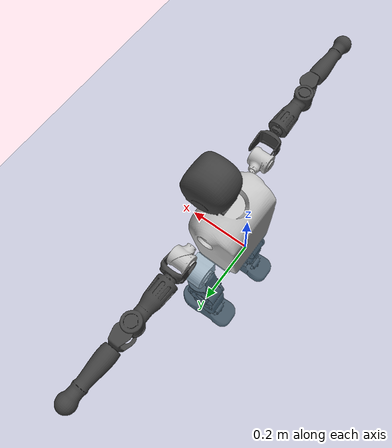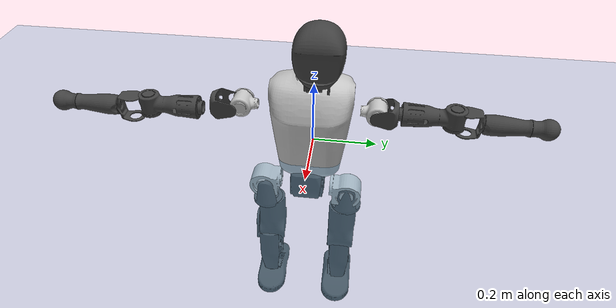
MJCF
<mujoco model="T1">
  <compiler angle="radian" assetdir="assets" balanceinertia="true" inertiafromgeom="false"/>

  <option timestep="0.005" density="1.2" viscosity="2e-05"/>

  <size nkey="1"/>

  <visual>
    <quality shadowsize="8192"/>
    <map shadowclip="0.5"/>
  </visual>

  <default>
    <default class="/">
      <joint armature="0.01" damping="0.01" frictionloss="0.1"/>
      <geom contype="0" conaffinity="0" group="1" solref="-1000 -80"/>
      <site size="0.01 0.005 0.005" group="5"/>
      <general forcelimited="true" biastype="affine" gainprm="25" biasprm="0 -25 -0.6"/>
      <default class="t1">
        <geom rgba="0.25 0.25 0.25 1"/>
        <default class="visual">
          <geom type="mesh" group="2"/>
        </default>
        <default class="collision">
          <geom group="3"/>
        </default>
        <default class="foot">
          <geom size="0.1115 0.05 0.015" type="box" condim="6" group="4" priority="1" solimp="0.015 1 0.015"/>
        </default>
        <default class="reward_collision_sphere">
          <geom group="5" rgba="1 0 0 1"/>
        </default>
      </default>
    </default>
  </default>

  <asset>
    <texture type="skybox" colorspace="auto" name="//unnamed_texture_0" builtin="gradient" rgb1="0.95 0.95 0.95" rgb2="0.95 0.95 0.95" width="100" height="600"/>
    <texture type="2d" colorspace="auto" name="texplane" builtin="checker" rgb1="0.345 0.575 0.748" rgb2="0.345 0.575 0.748" markrgb="1 1 1" width="512" height="512"/>
    <material name="MatPlane" class="/" texture="texplane" texuniform="true" texrepeat="2 2" specular="0.9"/>
    <mesh name="Trunk" class="/" file="Trunk.stl"/>
    <mesh name="H1" class="/" file="H1.stl"/>
    <mesh name="H2" class="/" file="H2.stl"/>
    <mesh name="AL1" class="/" file="AL1.stl"/>
    <mesh name="AL2" class="/" file="AL2.stl"/>
    <mesh name="AL3" class="/" file="AL3.stl"/>
    <mesh name="left_hand_link" class="/" file="left_hand_link.stl"/>
    <mesh name="AR1" class="/" file="AR1.stl"/>
    <mesh name="AR2" class="/" file="AR2.stl"/>
    <mesh name="AR3" class="/" file="AR3.stl"/>
    <mesh name="right_hand_link" class="/" file="right_hand_link.stl"/>
    <mesh name="Waist" class="/" file="Waist.stl"/>
    <mesh name="Hip_Pitch_Left" class="/" file="Hip_Pitch_Left.stl"/>
    <mesh name="Hip_Roll_Left" class="/" file="Hip_Roll_Left.stl"/>
    <mesh name="Hip_Yaw_Left" class="/" file="Hip_Yaw_Left.stl"/>
    <mesh name="Shank_Left" class="/" file="Shank_Left.stl"/>
    <mesh name="Ankle_Cross_Left" class="/" file="Ankle_Cross_Left.stl"/>
    <mesh name="left_foot_link" class="/" file="left_foot_link.stl"/>
    <mesh name="Hip_Pitch_Right" class="/" file="Hip_Pitch_Right.stl"/>
    <mesh name="Hip_Roll_Right" class="/" file="Hip_Roll_Right.stl"/>
    <mesh name="Hip_Yaw_Right" class="/" file="Hip_Yaw_Right.stl"/>
    <mesh name="Shank_Right" class="/" file="Shank_Right.stl"/>
    <mesh name="Ankle_Cross_Right" class="/" file="Ankle_Cross_Right.stl"/>
    <mesh name="right_foot_link" class="/" file="right_foot_link.stl"/>
  </asset>

  <worldbody>
    <geom name="floor" class="/" size="100 100 0.125" type="plane" group="0" material="MatPlane"/>
    <light name="toplight_shadow" class="/" pos="0 0 5" dir="0.0990148 0.0990148 -0.990148" type="directional" ambient="0.04 0.04 0.04" diffuse="0.55 0.55 0.55" specular="0.12 0.12 0.12"/>
    <light name="toplight_fill" class="/" pos="0 0 5" dir="0.0990148 0.0990148 -0.990148" type="directional" castshadow="false" ambient="0.04 0.04 0.04" diffuse="0.3 0.3 0.3" specular="0.08 0.08 0.08"/>
    <body name="trunk" childclass="t1" pos="0.00115666 0.000506667 -0.0118436" quat="0.999999 0.00107325 -0.00015386 0.000479854">
      <inertial pos="0.072882 -0.000162301 0.0964376" quat="0.99898 -0.00435436 -0.02974 0.0337123" mass="20.5377" diaginertia="0.399852 0.298487 0.0298541"/>
      <joint name="//unnamed_joint_0" type="free" armature="0" damping="0" frictionloss="0"/>
      <geom name="//unnamed_geom_1" class="visual" rgba="0.76 0.76 0.76 1" mesh="Trunk"/>
      <geom name="//unnamed_geom_2" class="collision" size="0.0881358 0.117514 0.176272" pos="0.0796741 0 0.103816" type="box"/>
      <geom name="//unnamed_geom_3" class="reward_collision_sphere" size="0.135142" pos="0.0796741 0 0.0865134"/>
      <geom name="//unnamed_geom_4" class="reward_collision_sphere" size="0.0176272" pos="0.0796741 0.113254 0"/>
      <geom name="//unnamed_geom_5" class="reward_collision_sphere" size="0.0176272" pos="0.0796741 -0.113254 0"/>
      <geom name="//unnamed_geom_6" class="reward_collision_sphere" size="0.0176272" pos="0.0796741 0.142566 0.155724"/>
      <geom name="//unnamed_geom_7" class="reward_collision_sphere" size="0.0176272" pos="0.0796741 -0.142566 0.155724"/>
      <site name="imu" pos="-0.0769626 0.0663999 -0.0348628" size="0.0117514"/>
      <camera name="track" pos="0 -2.66479 0" quat="0.707107 0.707107 0 0" mode="trackcom"/>
      <camera name="ego_camera" pos="0.162004 0 0.363356" quat="-0.5 -0.5 0.5 0.5"/>
      <body name="H1" pos="0.0894146 0.00893481 0.208345" quat="0.99999 0.000476637 -0.00407191 0.00148379">
        <inertial pos="-0.00144899 0.00180686 0.0536407" quat="0.757899 -0.00228733 0.0244589 0.651909" mass="0.676804" diaginertia="0.000822235 0.000906664 5.92999e-05"/>
        <joint name="AAHead_yaw" pos="0 0 0" axis="0.00343249 0.00217549 0.999992" range="-1.70861 1.38132" armature="0.00870481" damping="0.00800381" frictionloss="0.147007"/>
        <geom name="//unnamed_geom_8" class="visual" mesh="H1"/>
        <body name="H2" pos="-0.000782239 0.0139146 0.0521992" quat="1 6.82765e-05 -0.000103104 -5.9668e-05">
          <inertial pos="-0.00543122 -0.0127759 0.0752667" quat="0.984725 0.135115 -0.0804314 -0.0747717" mass="0.820108" diaginertia="0.00765035 0.00857 0.000858437"/>
          <joint name="Head_pitch" pos="0 0 0" axis="0.0238188 -0.999714 0.00205288" range="-1.24526 0.148446" armature="0.0197472" damping="0.0525362" frictionloss="0.123772"/>
          <geom name="//unnamed_geom_9" class="visual" mesh="H2"/>
          <geom name="//unnamed_geom_10" class="collision" size="0.0940115" pos="0.013279 0 0.0951647"/>
          <geom name="//unnamed_geom_11" class="reward_collision_sphere" size="0.105763" pos="0.026558 0 0.0865134"/>
        </body>
      </body>
      <body name="AL1" pos="0.0876356 0.142275 0.188349" quat="0.999992 -0.00219138 0.00312647 0.00133207">
        <inertial pos="-0.00838497 0.0520208 -0.0140586" quat="0.514874 0.520203 -0.498509 0.464523" mass="0.908031" diaginertia="0.00589365 0.00550109 0.000129326"/>
        <joint name="Left_Shoulder_Pitch" pos="0 0 0" axis="0.00629747 0.99963 0.0264596" stiffness="0.0638497" range="-3.03794 1.42146" armature="0.00952566" damping="0.0180537" frictionloss="0.111963"/>
        <geom name="//unnamed_geom_12" class="visual" rgba="0.76 0.76 0.76 1" mesh="AL1"/>
        <body name="AL2" pos="-0.001541 0.0490095 -0.00495057" quat="0.99997 0.00489461 -0.00347661 -0.00487919">
          <inertial pos="-0.00221102 0.0508148 0.0114678" quat="0.482545 0.516004 -0.478239 0.521706" mass="0.170924" diaginertia="0.00139129 0.00101779 7.36954e-05"/>
          <joint name="Left_Shoulder_Roll" pos="0 0 0" axis="-0.996841 -0.0714955 -0.0345834" stiffness="0.0420954" range="-1.38176 1.74518" armature="0.00695683" damping="0.0800275" frictionloss="0.154635"/>
          <geom name="//unnamed_geom_13" class="visual" mesh="AL2"/>
          <body name="AL3" pos="-0.00649129 0.0670897 -0.00163994" quat="0.999968 -0.00409253 -0.00150752 -0.00670244">
            <inertial pos="-0.00209256 0.112271 0.000182815" quat="0.71814 0.693421 0.0049783 -0.0584559" mass="1.37586" diaginertia="0.044627 0.0436983 0.000272734"/>
            <joint name="Left_Elbow_Pitch" pos="0 0 0" axis="-1.45282e-05 -1 3.42142e-05" range="-2.11995 2.25922" armature="0.0114077" damping="0.00239729" frictionloss="0.116898"/>
            <geom name="//unnamed_geom_14" class="visual" mesh="AL3"/>
            <geom name="//unnamed_geom_15" class="collision" size="0.0352543 0.0881358" pos="0 0.0666198 0" quat="0.707105 0.707108 0 0" type="cylinder"/>
            <geom name="//unnamed_geom_16" class="reward_collision_sphere" size="0.0423052"/>
            <body name="left_hand_link" pos="0.00167626 0.180987 -0.0097852" quat="0.999975 0.00412936 -0.0019144 -0.00546632">
              <inertial pos="0.00315868 0.153438 0.0141675" quat="0.751687 0.659234 0.00561234 -0.0185862" mass="0.644438" diaginertia="0.0362401 0.0406842 0.000137409"/>
              <joint name="Left_Elbow_Yaw" pos="0 0 0" axis="0.0271333 0.057173 0.997996" range="-2.40554 -0.235568" armature="0.0110583" damping="0.0555149" frictionloss="0.0271323"/>
              <geom name="//unnamed_geom_17" class="visual" mesh="left_hand_link"/>
              <geom name="//unnamed_geom_18" class="collision" size="0.0352543 0.102825" pos="0 0.173212 0" quat="0.707105 0.707108 0 0" type="cylinder"/>
              <geom name="//unnamed_geom_19" class="reward_collision_sphere" size="0.0587572"/>
              <geom name="//unnamed_geom_20" class="reward_collision_sphere" size="0.04113" pos="0 0.146564 0"/>
              <geom name="//unnamed_geom_21" class="reward_collision_sphere" size="0.04113" pos="0 0.286465 0"/>
            </body>
          </body>
        </body>
      </body>
      <body name="AR1" pos="0.0891149 -0.152307 0.188313" quat="0.999999 0.000818743 -0.000931152 -9.52954e-05">
        <inertial pos="-0.00198973 -0.0556044 -0.0024116" quat="0.500201 0.501916 -0.503044 0.494799" mass="0.796324" diaginertia="0.00573142 0.00589854 0.000146933"/>
        <joint name="Right_Shoulder_Pitch" pos="0 0 0" axis="-0.0155099 -0.999128 -0.0387579" range="-1.51039 3.36771" armature="0.0121553" damping="0" frictionloss="0.111865"/>
        <geom name="//unnamed_geom_22" class="visual" rgba="0.76 0.76 0.76 1" mesh="AR1"/>
        <body name="AR2" pos="0.0140441 -0.0741046 0.000260395" quat="0.999992 -0.00365175 -0.00124844 -0.00131293">
          <inertial pos="0.0141101 -0.0574096 0.0108662" quat="0.525214 0.448365 -0.5214 0.501259" mass="0.22891" diaginertia="0.00177707 0.00159032 8.33741e-05"/>
          <joint name="Right_Shoulder_Roll" pos="0 0 0" axis="-0.99986 0.0106229 0.0129397" range="-1.90592 1.85548" armature="0.0116534" damping="0" frictionloss="0.198479"/>
          <geom name="//unnamed_geom_23" class="visual" mesh="AR2"/>
          <body name="AR3" pos="0.00839721 -0.09586 -0.013306" quat="0.999999 0.000539589 -0.000856591 -0.0006111">
            <inertial pos="0.000949683 -0.108658 -0.000310187" quat="0.738623 0.670993 0.000321786 0.0648403" mass="1.84687" diaginertia="0.0593541 0.0476076 0.000321648"/>
            <joint name="Right_Elbow_Pitch" pos="0 0 0" axis="-0.00233264 0.99999 -0.00383802" range="-2.28876 2.25716" armature="0.013804" damping="0" frictionloss="0.0323185"/>
            <geom name="//unnamed_geom_24" class="visual" mesh="AR3"/>
            <geom name="//unnamed_geom_25" class="collision" size="0.0352543 0.0881358" pos="0 -0.0666198 0" quat="0.707105 0.707108 0 0" type="cylinder"/>
            <geom name="//unnamed_geom_26" class="reward_collision_sphere" size="0.0423052"/>
            <body name="right_hand_link" pos="0.0132107 -0.192521 -0.00560466" quat="0.999991 -0.00167662 0.0031309 -0.00225834">
              <inertial pos="-0.00355922 -0.146098 -0.013485" quat="0.703055 0.707907 -0.0668329 -0.0107403" mass="0.603627" diaginertia="0.0449612 0.0404583 0.000122043"/>
              <joint name="Right_Elbow_Yaw" pos="0 0 0" axis="-0.00204746 -0.0109908 0.999938" range="0.235932 2.35699" armature="0.0020823" damping="0.0193352" frictionloss="0.123365"/>
              <geom name="//unnamed_geom_27" class="visual" mesh="right_hand_link"/>
              <geom name="//unnamed_geom_28" class="collision" size="0.0352543 0.102825" pos="0 -0.173212 0" quat="0.707105 0.707108 0 0" type="cylinder"/>
              <geom name="//unnamed_geom_29" class="reward_collision_sphere" size="0.0587572"/>
              <geom name="//unnamed_geom_30" class="reward_collision_sphere" size="0.04113" pos="0 -0.146564 0"/>
              <geom name="//unnamed_geom_31" class="reward_collision_sphere" size="0.04113" pos="0 -0.286465 0"/>
            </body>
          </body>
        </body>
      </body>
      <body name="Waist" pos="0.0810574 -0.00607378 -0.0882082" quat="1 -0.000429982 0.00013679 0.000382255">
        <inertial pos="-0.0112592 -0.00151642 0.00770081" quat="0.98955 -0.00127902 -0.1439 0.00900377" mass="4.20764" diaginertia="0.0255299 0.0301582 0.00252973"/>
        <joint name="Waist" pos="0 0 0" axis="0.0278951 -0.00116063 0.99961" stiffness="0.00212612" range="-1.88168 1.42516" armature="0.0186594" damping="0.0037292" frictionloss="0.130821"/>
        <geom name="//unnamed_geom_32" class="visual" mesh="Waist"/>
        <body name="Hip_Pitch_Left" pos="0.0139961 0.128058 -0.00293201" quat="0.999973 -0.00613344 0.00237775 -0.00318331">
          <inertial pos="0.0100728 -0.0249329 -0.0168766" quat="0.975571 0.21919 0.0145779 0.00212845" mass="1.9527" diaginertia="0.00835381 0.00550422 0.000685815"/>
          <joint name="Left_Hip_Pitch" pos="0 0 0" axis="-0.0177433 0.99981 0.0080227" range="-1.77819 1.37102" armature="0.0123215" damping="0" frictionloss="0.115174"/>
          <geom name="//unnamed_geom_33" class="visual" rgba="0.76 0.76 0.76 1" mesh="Hip_Pitch_Left"/>
          <body name="Hip_Roll_Left" pos="-0.00871668 -8.88406e-05 -0.011637" quat="0.999978 0.000870016 -0.00196338 0.00624466">
            <inertial pos="0.00145816 0.000206636 -0.041278" quat="0.707095 -0.00644837 -0.0047838 0.707073" mass="0.629414" diaginertia="0.00727649 0.00739547 0.000288144"/>
            <joint name="Left_Hip_Roll" pos="0 0 0" axis="-1 -0.000108303 0.000119388" stiffness="0.0466188" range="-1.66632 0.310931" armature="0.0124893" damping="0.00527788" frictionloss="0.047706"/>
            <geom name="//unnamed_geom_34" class="visual" mesh="Hip_Roll_Left"/>
            <geom name="//unnamed_geom_35" class="reward_collision_sphere" size="0.0646329"/>
            <body name="Hip_Yaw_Left" pos="0.00453894 -0.0084456 -0.0738995" quat="0.999988 -0.000645985 -0.00480698 0.000236314">
              <inertial pos="-0.011102 -0.000579745 -0.0779255" quat="0.706794 -0.094365 0.0114365 0.701004" mass="3.83665" diaginertia="0.101517 0.125964 0.00111391"/>
              <joint name="Left_Hip_Yaw" pos="0 0 0" axis="0.0229201 0.0622964 -0.997794" range="-1.02368 0.951754" armature="0.01224" damping="0.0301067" frictionloss="0.118054"/>
              <geom name="//unnamed_geom_36" class="visual" mesh="Hip_Yaw_Left"/>
              <geom name="//unnamed_geom_37" class="collision" size="0.0587572 0.0940115" type="cylinder"/>
              <body name="Shank_Left" pos="-0.0188085 -0.000721036 -0.112615" quat="0.99999 0.00270436 -0.00179647 0.00293347">
                <inertial pos="-0.00719247 -0.00575795 -0.108992" quat="0.99556 -0.0558411 -0.0181379 0.0735671" mass="2.6763" diaginertia="0.165535 0.132377 0.000935721"/>
                <joint name="Left_Knee_Pitch" pos="0 0 0" axis="0.000814319 0.999998 0.00179852" stiffness="4.5839e-05" range="-0.133871 2.32372" armature="0.00823769" damping="0.0144924" frictionloss="0.0421456"/>
                <geom name="//unnamed_geom_38" class="visual" mesh="Shank_Left"/>
                <geom name="//unnamed_geom_39" class="collision" size="0.0587572 0.0881358" pos="0 0 -0.103816" type="cylinder"/>
                <geom name="//unnamed_geom_40" class="reward_collision_sphere" size="0.0763844"/>
                <body name="Ankle_Cross_Left" pos="0.00755318 -0.00271614 -0.245725" quat="0.999989 0.00192508 -0.00325035 0.00293592">
                  <inertial pos="-0.0019749 -0.00838157 0.00872625" quat="0.415265 0.553901 0.560217 0.454868" mass="0.0943221" diaginertia="8.31511e-05 0.000101016 5.08642e-06"/>
                  <joint name="Left_Ankle_Pitch" pos="0 0 0" axis="-0.0327501 0.999045 -0.0289366" stiffness="0.0124427" range="-0.553419 0.164699" armature="0.0167406" damping="0" frictionloss="0.0399081"/>
                  <geom name="//unnamed_geom_41" class="visual" mesh="Ankle_Cross_Left"/>
                  <body name="left_foot_link" pos="-0.0133416 -0.00118737 0.00350527" quat="0.999995 0.000520303 -0.00308118 -0.000305479">
                    <inertial pos="0.00556365 0.0142312 -0.0121993" quat="0.00270744 0.620789 -0.00154655 0.783971" mass="1.20732" diaginertia="0.0095612 0.00981133 0.000971496"/>
                    <joint name="Left_Ankle_Roll" pos="0 0 0" axis="-0.999569 -0.016086 0.0245662" range="-0.244768 0.580555" armature="0.0125747" damping="0.0398888" frictionloss="0.10249"/>
                    <geom name="//unnamed_geom_42" class="visual" mesh="left_foot_link"/>
                    <geom name="left_foot" class="foot" size="0.103364 0.057361 0.0124637" pos="0.013279 0 -0.012977"/>
                    <geom name="//unnamed_geom_44" class="reward_collision_sphere" size="0.0611075" pos="0.013279 0 -0.012977"/>
                    <geom name="//unnamed_geom_45" class="reward_collision_sphere" size="0.0352543" pos="0.126151 -0.0306451 -0.012977"/>
                    <geom name="//unnamed_geom_46" class="reward_collision_sphere" size="0.0352543" pos="-0.0929531 -0.0306451 -0.012977"/>
                    <site name="left_foot" class="foot" pos="0.013279 0 -0.012977" size="0.0117514"/>
                  </body>
                </body>
              </body>
            </body>
          </body>
        </body>
        <body name="Hip_Pitch_Right" pos="-0.00138804 -0.140606 0.000930175" quat="0.99999 0.00390947 -0.00224592 -0.000335369">
          <inertial pos="0.00203159 0.00442987 -0.0297929" quat="0.978633 -0.196316 0.0424906 0.0439549" mass="1.5591" diaginertia="0.00693138 0.00566922 0.000482888"/>
          <joint name="Right_Hip_Pitch" pos="0 0 0" axis="-0.023638 -0.998192 0.0552609" stiffness="0.0406837" range="-1.56432 1.77046" armature="0.00502593" damping="0.0295048" frictionloss="0.0650294"/>
          <geom name="//unnamed_geom_47" class="visual" rgba="0.76 0.76 0.76 1" mesh="Hip_Pitch_Right"/>
          <body name="Hip_Roll_Right" pos="-0.000661191 0.00822672 -0.0229435" quat="0.999969 0.00206038 0.0073025 0.00214332">
            <inertial pos="-0.0138858 -0.00614096 -0.0360242" quat="0.737134 0.0290475 0.014264 0.674972" mass="0.717111" diaginertia="0.00929175 0.00681914 0.000288195"/>
            <joint name="Right_Hip_Roll" pos="0 0 0" axis="-0.999986 0.00511677 -0.00110295" stiffness="0.000876746" range="-0.213149 1.3318" armature="0.0108545" damping="0.00609292" frictionloss="0.120593"/>
            <geom name="//unnamed_geom_48" class="visual" mesh="Hip_Roll_Right"/>
            <geom name="//unnamed_geom_49" class="reward_collision_sphere" size="0.0646329"/>
            <body name="Hip_Yaw_Right" pos="-0.00338362 0.0115015 -0.0678769" quat="0.999977 0.0001833 -0.00684115 -0.000368743">
              <inertial pos="-0.0190221 0.00346306 -0.0832531" quat="0.691985 -0.072414 -0.0277168 0.717736" mass="2.68825" diaginertia="0.0733029 0.0708913 0.000938264"/>
              <joint name="Right_Hip_Yaw" pos="0 0 0" axis="-0.0239235 0.0202258 -0.999509" range="-1.02064 1.31151" armature="0.0108346" damping="0.0120173" frictionloss="0.198597"/>
              <geom name="//unnamed_geom_50" class="visual" mesh="Hip_Yaw_Right"/>
              <geom name="//unnamed_geom_51" class="collision" size="0.0587572 0.0940115" type="cylinder"/>
              <body name="Shank_Right" pos="-0.0041747 -0.0104636 -0.108554" quat="0.999977 -0.00425432 0.000816659 0.00522685">
                <inertial pos="-0.0210226 -0.00904134 -0.102897" quat="0.999308 0.000124234 -0.0219768 -0.0300219" mass="2.43921" diaginertia="0.146527 0.177819 0.00113511"/>
                <joint name="Right_Knee_Pitch" pos="0 0 0" axis="0.017465 -0.999799 -0.00981722" range="-2.23574 0.00570007" armature="0.0106168" damping="0" frictionloss="0.0738542"/>
                <geom name="//unnamed_geom_52" class="visual" mesh="Shank_Right"/>
                <geom name="//unnamed_geom_53" class="collision" size="0.0587572 0.0881358" pos="0 0 -0.103816" type="cylinder"/>
                <geom name="//unnamed_geom_54" class="reward_collision_sphere" size="0.0763844"/>
                <body name="Ankle_Cross_Right" pos="-0.000468088 0.00108802 -0.230959" quat="0.999978 -0.00334891 -0.00159018 -0.00551392">
                  <inertial pos="-0.00532405 -0.000469862 -0.00648499" quat="0.436513 0.544668 0.578928 0.421468" mass="0.156938" diaginertia="0.000136213 0.000123978 6.45505e-06"/>
                  <joint name="Right_Ankle_Pitch" pos="0 0 0" axis="0.045525 -0.996849 0.0649522" range="-0.338708 1.08629" armature="0.00472996" damping="0.058131" frictionloss="0.20898"/>
                  <geom name="//unnamed_geom_55" class="visual" mesh="Ankle_Cross_Right"/>
                  <body name="right_foot_link" pos="-0.0107941 0.00117648 -0.0164213" quat="0.999991 0.00386165 0.00141386 0.00144173">
                    <inertial pos="-0.00540427 -4.3232e-05 0.00501018" quat="-0.0130197 0.62762 -0.00154978 0.778409" mass="0.855465" diaginertia="0.0114916 0.00885026 0.0010621"/>
                    <joint name="Right_Ankle_Roll" pos="0 0 0" axis="-0.998224 0.0449631 -0.0390742" range="-0.755313 0.279342" armature="0.0189825" damping="0.00794333" frictionloss="0.105061"/>
                    <geom name="//unnamed_geom_56" class="visual" mesh="right_foot_link"/>
                    <geom name="right_foot" class="foot" size="0.204714 0.038396 0.016861" pos="0.013279 0 -0.012977"/>
                    <geom name="//unnamed_geom_58" class="reward_collision_sphere" size="0.0470058"/>
                    <geom name="//unnamed_geom_59" class="reward_collision_sphere" size="0.0352543" pos="0.013279 0 -0.012977"/>
                    <geom name="//unnamed_geom_60" class="reward_collision_sphere" size="0.0352543" pos="0.126151 0.0306451 -0.012977"/>
                    <geom name="//unnamed_geom_61" class="reward_collision_sphere" size="0.0352543" pos="-0.0929531 0.0306451 -0.012977"/>
                    <site name="right_foot" class="foot" pos="0.013279 0 -0.012977" size="0.0117514"/>
                  </body>
                </body>
              </body>
            </body>
          </body>
        </body>
      </body>
    </body>
  </worldbody>

  <contact>
    <pair class="/" geom1="floor" geom2="left_foot" name="//unnamed_contact_0"/>
    <pair class="/" geom1="floor" geom2="right_foot" name="//unnamed_contact_1"/>
  </contact>

  <actuator>
    <general name="AAHead_yaw" class="/" joint="AAHead_yaw" forcerange="-10.689 10.689" gainprm="20.8378" biasprm="0 -20.8378 -0.59249"/>
    <general name="Head_pitch" class="/" joint="Head_pitch" forcerange="-7.37084 7.37084" gainprm="20.8378" biasprm="0 -20.8378 -0.59249"/>
    <general name="Left_Shoulder_Pitch" class="/" joint="Left_Shoulder_Pitch" forcerange="-20.7758 20.7758" gainprm="20.8378" biasprm="0 -20.8378 -0.59249"/>
    <general name="Left_Shoulder_Roll" class="/" joint="Left_Shoulder_Roll" forcerange="-20.9416 20.9416" gainprm="20.8378" biasprm="0 -20.8378 -0.59249"/>
    <general name="Left_Elbow_Pitch" class="/" joint="Left_Elbow_Pitch" forcerange="-11.2536 11.2536" gainprm="20.8378" biasprm="0 -20.8378 -0.59249"/>
    <general name="Left_Elbow_Yaw" class="/" joint="Left_Elbow_Yaw" forcerange="-24.1429 24.1429" gainprm="20.8378" biasprm="0 -20.8378 -0.59249"/>
    <general name="Right_Shoulder_Pitch" class="/" joint="Right_Shoulder_Pitch" forcerange="-21.5511 21.5511" gainprm="20.8378" biasprm="0 -20.8378 -0.59249"/>
    <general name="Right_Shoulder_Roll" class="/" joint="Right_Shoulder_Roll" forcerange="-21.2338 21.2338" gainprm="20.8378" biasprm="0 -20.8378 -0.59249"/>
    <general name="Right_Elbow_Pitch" class="/" joint="Right_Elbow_Pitch" forcerange="-25.5467 25.5467" gainprm="20.8378" biasprm="0 -20.8378 -0.59249"/>
    <general name="Right_Elbow_Yaw" class="/" joint="Right_Elbow_Yaw" forcerange="-10.9013 10.9013" gainprm="20.8378" biasprm="0 -20.8378 -0.59249"/>
    <general name="Waist" class="/" joint="Waist" forcerange="-25.3126 25.3126" gainprm="20.8378" biasprm="0 -20.8378 -0.59249"/>
    <general name="Left_Hip_Pitch" class="/" joint="Left_Hip_Pitch" forcerange="-83.672 83.672" gainprm="20.8378" biasprm="0 -20.8378 -0.59249"/>
    <general name="Left_Hip_Roll" class="/" joint="Left_Hip_Roll" forcerange="-29.8832 29.8832" gainprm="20.8378" biasprm="0 -20.8378 -0.59249"/>
    <general name="Left_Hip_Yaw" class="/" joint="Left_Hip_Yaw" forcerange="-27.5471 27.5471" gainprm="20.8378" biasprm="0 -20.8378 -0.59249"/>
    <general name="Left_Knee_Pitch" class="/" joint="Left_Knee_Pitch" forcerange="-35.7458 35.7458" gainprm="20.8378" biasprm="0 -20.8378 -0.59249"/>
    <general name="Left_Ankle_Pitch" class="/" joint="Left_Ankle_Pitch" forcerange="-20.3608 20.3608" gainprm="20.8378" biasprm="0 -20.8378 -0.59249"/>
    <general name="Left_Ankle_Roll" class="/" joint="Left_Ankle_Roll" forcerange="-16.957 16.957" gainprm="20.8378" biasprm="0 -20.8378 -0.59249"/>
    <general name="Right_Hip_Pitch" class="/" joint="Right_Hip_Pitch" forcerange="-24.2236 24.2236" gainprm="20.8378" biasprm="0 -20.8378 -0.59249"/>
    <general name="Right_Hip_Roll" class="/" joint="Right_Hip_Roll" forcerange="-29.3166 29.3166" gainprm="20.8378" biasprm="0 -20.8378 -0.59249"/>
    <general name="Right_Hip_Yaw" class="/" joint="Right_Hip_Yaw" forcerange="-27.6065 27.6065" gainprm="20.8378" biasprm="0 -20.8378 -0.59249"/>
    <general name="Right_Knee_Pitch" class="/" joint="Right_Knee_Pitch" forcerange="-44.4157 44.4157" gainprm="20.8378" biasprm="0 -20.8378 -0.59249"/>
    <general name="Right_Ankle_Pitch" class="/" joint="Right_Ankle_Pitch" forcerange="-30.2957 30.2957" gainprm="20.8378" biasprm="0 -20.8378 -0.59249"/>
    <general name="Right_Ankle_Roll" class="/" joint="Right_Ankle_Roll" forcerange="-27.2164 27.2164" gainprm="20.8378" biasprm="0 -20.8378 -0.59249"/>
  </actuator>

  <sensor>
    <gyro site="imu" name="imu_angular_velocity"/>
    <velocimeter site="imu" name="imu_linear_velocity"/>
    <framelinvel objtype="site" objname="left_foot" name="left_foot_global_linear_velocity"/>
    <framelinvel objtype="site" objname="right_foot" name="right_foot_global_linear_velocity"/>
  </sensor>

  <keyframe>
    <key name="home" qpos="0 0 0.6385 1 0 0 0 0 0 0 1.4 0 -0.4 0 -1.4 0 0.4 0 -0.4 0 0 0.8 -0.4 0 0.4 0 0 -0.8 0.4 0"/>
  </keyframe>
</mujoco>
